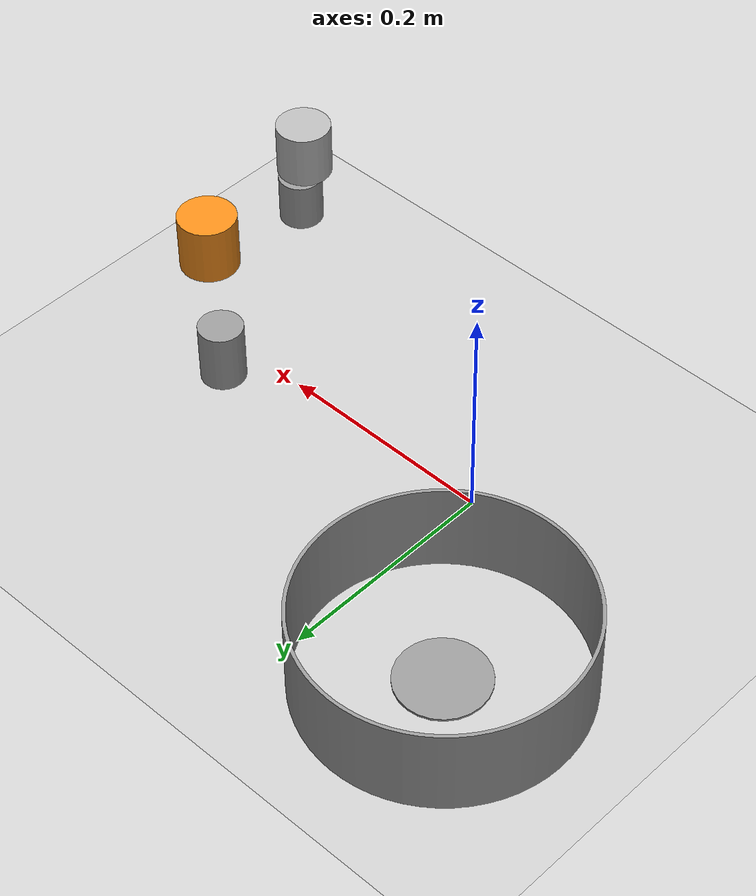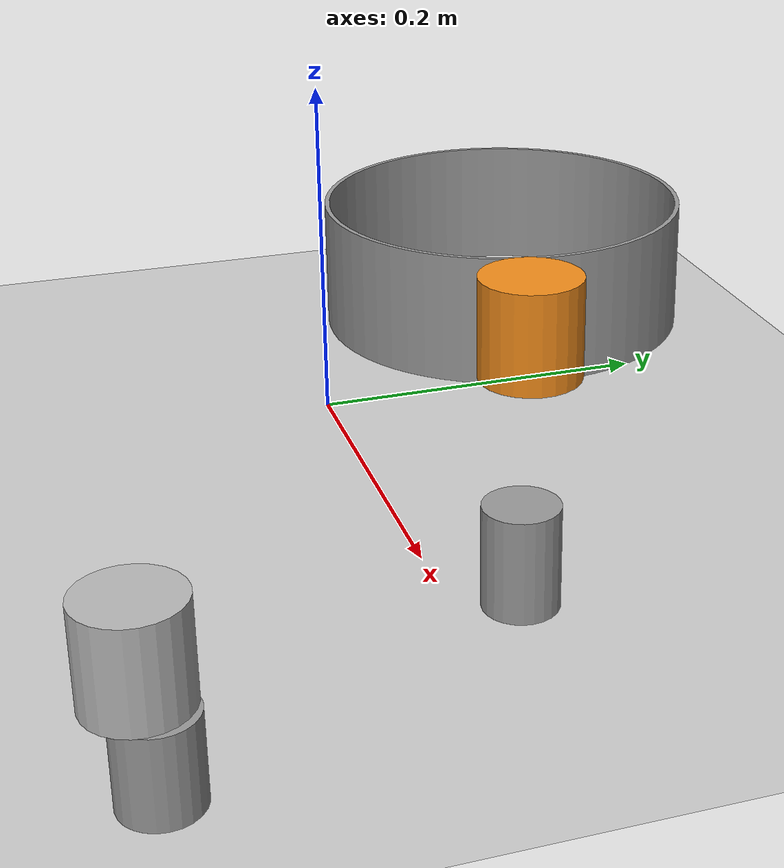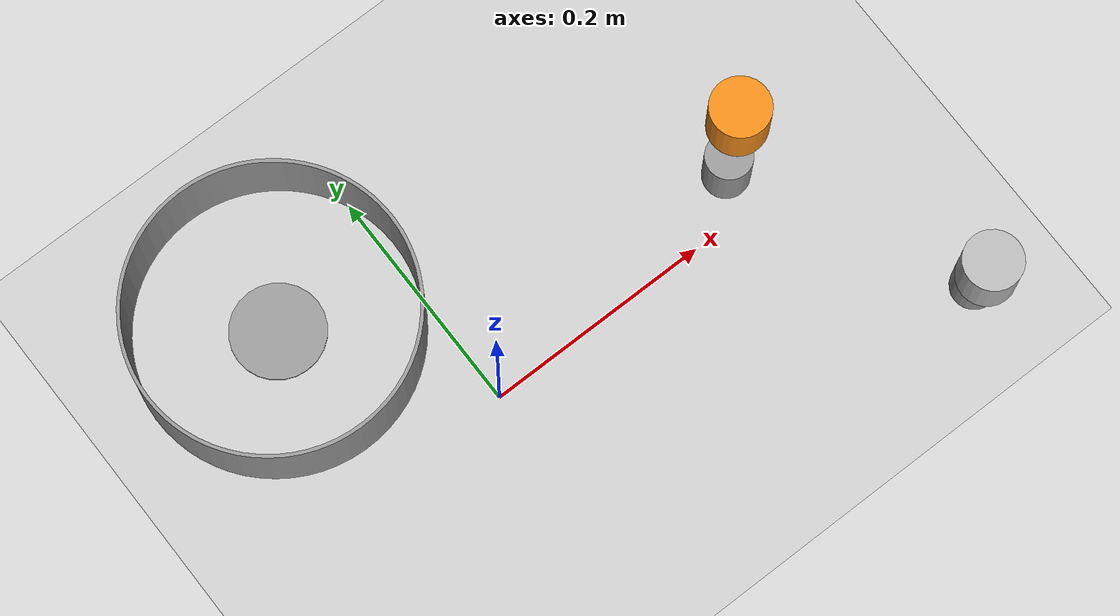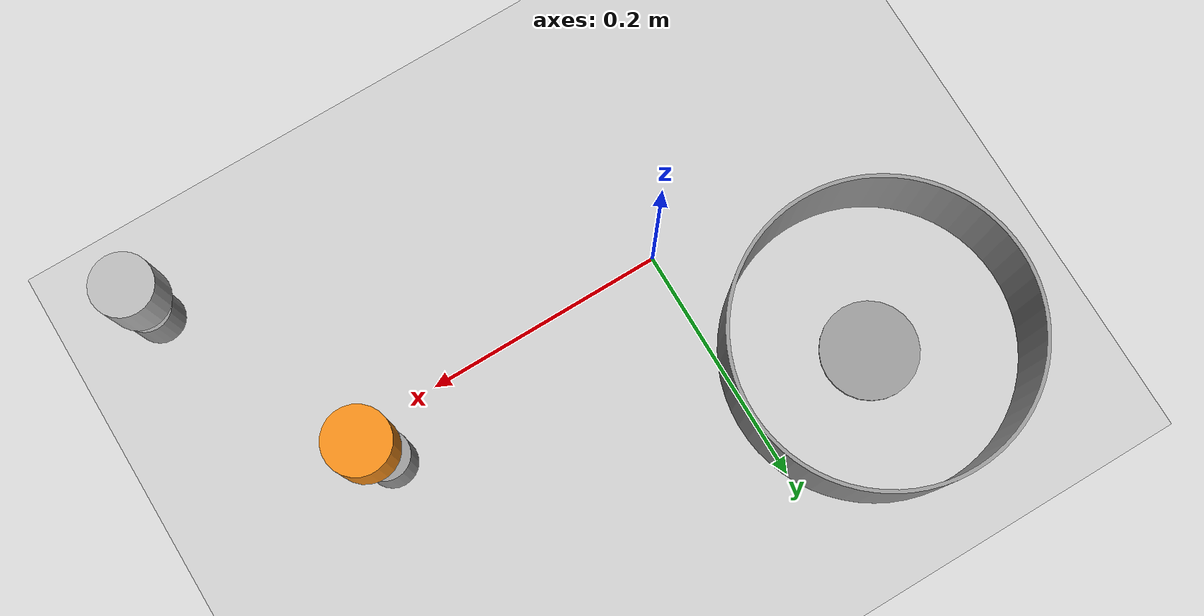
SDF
<sdf version="1.4">
  <world name="default">
    <!-- A global light source -->
    <include>
      <uri>model://sun</uri>
    </include>

    <!-- A ground plane -->

    <model name='ground_plane'>
      <static>1</static>
      <link name='link'>
	<pose frame=''>0 0 0 0 0 3.14</pose>
        <collision name='collision'>
          <geometry>
            <plane>
              <normal>0 0 1</normal>
              <size>2.2 2.2</size>
            </plane>
          </geometry>
          <surface>
            <contact>
              <collide_bitmask>65535</collide_bitmask>
              <ode/>
            </contact>
            <friction>
              <ode>
                <mu>1000</mu>
                <mu2>1000</mu2>
              </ode>
              <torsional>
                <ode/>
              </torsional>
            </friction>
            <bounce/>
          </surface>
          <max_contacts>10</max_contacts>
        </collision>
        <visual name='visual'>
          <cast_shadows>0</cast_shadows>
          <geometry>
            <plane>
              <normal>0 0 1</normal>
              <size>2.2 2.2</size>
            </plane>
          </geometry>
          <material>
            <script>
	      <uri>model://bottom_ruller/materials/scripts</uri>
              <uri>model://bottom_ruller/materials/textures</uri>
              <name>bottom_ruller</name>
            </script>
          </material>
        </visual>
        <self_collide>0</self_collide>
        <kinematic>0</kinematic>
      </link>
    </model>

    <physics type="ode">
      <real_time_update_rate>1000.0</real_time_update_rate>
      <max_step_size>0.001</max_step_size>
      <real_time_factor>1</real_time_factor>
      <ode>
        <solver>
          <type>quick</type>
          <iters>150</iters>
          <precon_iters>0</precon_iters>
          <sor>1.400000</sor>
          <use_dynamic_moi_rescaling>1</use_dynamic_moi_rescaling>
        </solver>
        <constraints>
          <cfm>0.00001</cfm>
          <erp>0.2</erp>
          <contact_max_correcting_vel>2000.000000</contact_max_correcting_vel>
          <contact_surface_layer>0.01000</contact_surface_layer>
        </constraints>
      </ode>
    </physics>

    <!-- Load world -->
    <include>
      <uri>model://jjapit</uri>
    </include>

    <scene>
      <ambient>0.4 0.4 0.4 1</ambient>
      <background>0.7 0.7 0.7 1</background>
      <shadows>true</shadows>
    </scene>

    <light name='user_directional_light_2' type='directional'>
      <pose frame=''>-1.68 0.07 0.81 0 -1.19 0</pose>
      <diffuse>0.5 0.5 0.5 1</diffuse>
      <specular>0.1 0.1 0.1 1</specular>
      <direction>0.1 0.1 -0.9</direction>
      <attenuation>
        <range>20</range>
        <constant>0.5</constant>
        <linear>0.01</linear>
        <quadratic>0.001</quadratic>
      </attenuation>
      <cast_shadows>1</cast_shadows>
    </light>

    <gui fullscreen='0'>
      <camera name='user_camera'>
        <pose> 2.0 -2.0 1.2 0.0 0.275643 2.356190 </pose>
        <view_controller>orbit</view_controller>
      </camera>
    </gui>

  </world>
</sdf>

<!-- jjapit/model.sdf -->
<sdf version='1.6'>
  <model name='jjapit'>
    <link name='link_1'>
      <pose frame=''>0.25729 0.03419 0.02 0 -0 0</pose>
      <inertial>
        <mass>1</mass>
        <inertia>
          <ixx>0.145833</ixx>
          <ixy>0</ixy>
          <ixz>0</ixz>
          <iyy>0.145833</iyy>
          <iyz>0</iyz>
          <izz>0.125</izz>
        </inertia>
      </inertial>
      <self_collide>0</self_collide>
      <kinematic>0</kinematic>
      <visual name='visual'>
        <pose frame=''>0 0 0 0 -0 0</pose>
        <geometry>
          <cylinder>
            <radius>0.02</radius>
            <length>0.07</length>
          </cylinder>
        </geometry>
        <material>
          <lighting>1</lighting>
          <script>
            <uri>file://media/materials/scripts/gazebo.material</uri>
            <name>Gazebo/Grey</name>
          </script>
          <shader type='pixel'/>
          <ambient>0.3 0.3 0.3 1</ambient>
          <diffuse>0.7 0.7 0.7 1</diffuse>
          <specular>0.01 0.01 0.01 1</specular>
          <emissive>0 0 0 1</emissive>
        </material>
        <transparency>0</transparency>
        <cast_shadows>1</cast_shadows>
      </visual>
      <collision name='collision'>
        <laser_retro>0</laser_retro>
        <max_contacts>10</max_contacts>
        <pose frame=''>0 0 0 0 -0 0</pose>
        <geometry>
          <cylinder>
            <radius>0.02</radius>
            <length>0.07</length>
          </cylinder>
        </geometry>
        <surface>
          <friction>
            <ode>
              <mu>1</mu>
              <mu2>1</mu2>
              <fdir1>0 0 0</fdir1>
              <slip1>0</slip1>
              <slip2>0</slip2>
            </ode>
            <torsional>
              <coefficient>1</coefficient>
              <patch_radius>0</patch_radius>
              <surface_radius>0</surface_radius>
              <use_patch_radius>1</use_patch_radius>
              <ode>
                <slip>0</slip>
              </ode>
            </torsional>
          </friction>
          <bounce>
            <restitution_coefficient>0</restitution_coefficient>
            <threshold>1e+06</threshold>
          </bounce>
          <contact>
            <collide_without_contact>0</collide_without_contact>
            <collide_without_contact_bitmask>1</collide_without_contact_bitmask>
            <collide_bitmask>1</collide_bitmask>
            <ode>
              <soft_cfm>0</soft_cfm>
              <soft_erp>0.2</soft_erp>
              <kp>1e+13</kp>
              <kd>1</kd>
              <max_vel>0.01</max_vel>
              <min_depth>0</min_depth>
            </ode>
            <bullet>
              <split_impulse>1</split_impulse>
              <split_impulse_penetration_threshold>-0.01</split_impulse_penetration_threshold>
              <soft_cfm>0</soft_cfm>
              <soft_erp>0.2</soft_erp>
              <kp>1e+13</kp>
              <kd>1</kd>
            </bullet>
          </contact>
        </surface>
      </collision>
    </link>
    <link name='link_1_clone'>
      <pose frame=''>0.357493 -0.16 0.02 0 -0 0</pose>
      <inertial>
        <mass>1</mass>
        <inertia>
          <ixx>0.145833</ixx>
          <ixy>0</ixy>
          <ixz>0</ixz>
          <iyy>0.145833</iyy>
          <iyz>0</iyz>
          <izz>0.125</izz>
        </inertia>
      </inertial>
      <self_collide>0</self_collide>
      <kinematic>0</kinematic>
      <visual name='visual'>
        <pose frame=''>0 0 0 0 -0 0</pose>
        <geometry>
          <cylinder>
            <radius>0.02</radius>
            <length>0.05</length>
          </cylinder>
        </geometry>
        <material>
          <lighting>1</lighting>
          <script>
            <uri>file://media/materials/scripts/gazebo.material</uri>
            <name>Gazebo/Grey</name>
          </script>
          <shader type='pixel'/>
          <ambient>0.3 0.3 0.3 1</ambient>
          <diffuse>0.7 0.7 0.7 1</diffuse>
          <specular>0.01 0.01 0.01 1</specular>
          <emissive>0 0 0 1</emissive>
        </material>
        <transparency>0</transparency>
        <cast_shadows>1</cast_shadows>
      </visual>
      <collision name='collision'>
        <laser_retro>0</laser_retro>
        <max_contacts>10</max_contacts>
        <pose frame=''>0 0 0 0 -0 0</pose>
        <geometry>
          <cylinder>
            <radius>0.02</radius>
            <length>0.05</length>
          </cylinder>
        </geometry>
        <surface>
          <friction>
            <ode>
              <mu>1</mu>
              <mu2>1</mu2>
              <fdir1>0 0 0</fdir1>
              <slip1>0</slip1>
              <slip2>0</slip2>
            </ode>
            <torsional>
              <coefficient>1</coefficient>
              <patch_radius>0</patch_radius>
              <surface_radius>0</surface_radius>
              <use_patch_radius>1</use_patch_radius>
              <ode>
                <slip>0</slip>
              </ode>
            </torsional>
          </friction>
          <bounce>
            <restitution_coefficient>0</restitution_coefficient>
            <threshold>1e+06</threshold>
          </bounce>
          <contact>
            <collide_without_contact>0</collide_without_contact>
            <collide_without_contact_bitmask>1</collide_without_contact_bitmask>
            <collide_bitmask>1</collide_bitmask>
            <ode>
              <soft_cfm>0</soft_cfm>
              <soft_erp>0.2</soft_erp>
              <kp>1e+13</kp>
              <kd>1</kd>
              <max_vel>0.01</max_vel>
              <min_depth>0</min_depth>
            </ode>
            <bullet>
              <split_impulse>1</split_impulse>
              <split_impulse_penetration_threshold>-0.01</split_impulse_penetration_threshold>
              <soft_cfm>0</soft_cfm>
              <soft_erp>0.2</soft_erp>
              <kp>1e+13</kp>
              <kd>1</kd>
            </bullet>
          </contact>
        </surface>
      </collision>
    </link>
    <model name='round_tin_base'>
      <link name='link'>
        <inertial>
          <pose frame=''>0 0 0.014085 0 -0 0</pose>
          <mass>0.0223</mass>
          <inertia>
            <ixx>1.93147e-05</ixx>
            <ixy>0</ixy>
            <ixz>0</ixz>
            <iyy>1.93147e-05</iyy>
            <iyz>0</iyz>
            <izz>3.568e-05</izz>
          </inertia>
        </inertial>
        <collision name='collision_cylinder'>
          <pose frame=''>0 0 0.001 0 -0 0</pose>
          <geometry>
            <cylinder>
              <radius>0.04</radius>
              <length>0.002</length>
            </cylinder>
          </geometry>
          <surface>
            <contact>
              <poissons_ratio>0.36</poissons_ratio>
              <elastic_modulus>5e+10</elastic_modulus>
              <ode>
                <kp>100000</kp>
                <kd>100</kd>
                <max_vel>100</max_vel>
                <min_depth>0.001</min_depth>
              </ode>
            </contact>
            <friction>
              <torsional>
                <coefficient>1</coefficient>
                <use_patch_radius>0</use_patch_radius>
                <surface_radius>0.01</surface_radius>
              </torsional>
            </friction>
          </surface>
        </collision>
        <visual name='visual_cylinder'>
          <pose frame=''>0 0 0.001 0 -0 0</pose>
          <geometry>
            <cylinder>
              <radius>0.04</radius>
              <length>0.002</length>
            </cylinder>
          </geometry>
          <material>
            <script>
              <uri>file://media/materials/scripts/gazebo.material</uri>
              <name>Gazebo/Grey</name>
            </script>
          </material>
        </visual>
        <collision name='collision_mesh'>
          <pose frame=''>0 0 0.001 0 -0 0</pose>
          <geometry>
            <mesh>
              <uri>model://round_tin_base/meshes/round_tin_base.dae</uri>
              <scale>3 3 3</scale>
            </mesh>
          </geometry>
          <surface>
            <contact>
              <ode>
                <max_vel>0.1</max_vel>
                <min_depth>0.0001</min_depth>
              </ode>
            </contact>
          </surface>
        </collision>
        <visual name='visual_mesh'>
          <pose frame=''>0 0 0.001 0 -0 0</pose>
          <geometry>
            <mesh>
              <uri>model://round_tin_base/meshes/round_tin_base.dae</uri>
              <scale>3 3 3</scale>
            </mesh>
          </geometry>
          <material>
            <script>
              <uri>file://media/materials/scripts/gazebo.material</uri>
              <name>Gazebo/Grey</name>
            </script>
          </material>
        </visual>
      </link>
      <pose frame=''>-0.107518 0.151406 0 0 -0 0</pose>
    </model>
    <model name='small_beer'>
      <link name='link'>
        <pose frame=''>0.2 0 0 0 -0 -0.1</pose>
        <inertial>
          <mass>0.001</mass>
          <inertia>
            <ixx>4.7583e-05</ixx>
            <ixy>0</ixy>
            <ixz>0</ixz>
            <iyy>4.7583e-05</iyy>
            <iyz>0</iyz>
            <izz>3.125e-06</izz>
          </inertia>
        </inertial>
        <collision name='collision'>
          <geometry>
            <cylinder>
              <radius>0.025</radius>
              <length>0.05</length>
            </cylinder>
          </geometry>
          <surface>
            <friction>
              <ode>
                <mu>1e+06</mu>
                <mu2>10000</mu2>
              </ode>
              <torsional>
                <ode/>
              </torsional>
            </friction>
            <contact>
              <ode>
                <kp>1e+06</kp>
                <kd>100</kd>
                <max_vel>1</max_vel>
                <min_depth>0.002</min_depth>
              </ode>
            </contact>
            <bounce/>
          </surface>
          <max_contacts>10</max_contacts>
        </collision>
        <visual name='visual'>
          <geometry>
            <cylinder>
              <radius>0.025</radius>
              <length>0.05</length>
            </cylinder>
          </geometry>
          <material>
            <script>
              <uri>model://apple1/materials/scripts</uri>
              <uri>model://apple1/materials/textures</uri>
              <name>apple1</name>
            </script>
          </material>
        </visual>
        <self_collide>0</self_collide>
        <kinematic>0</kinematic>
      </link>
      <pose frame=''>0.541089 -0.245561 0.075 0 -0 2.73305</pose>
    </model>
    <model name='small_beer_clone'>
      <link name='link'>
        <pose frame=''>0.2 0 0 0 -0 0.8</pose>
        <inertial>
          <mass>0.001</mass>
          <inertia>
            <ixx>4.7583e-05</ixx>
            <ixy>0</ixy>
            <ixz>0</ixz>
            <iyy>4.7583e-05</iyy>
            <iyz>0</iyz>
            <izz>3.125e-06</izz>
          </inertia>
        </inertial>
        <collision name='collision'>
          <geometry>
            <cylinder>
              <radius>0.025</radius>
              <length>0.05</length>
            </cylinder>
          </geometry>
          <surface>
            <friction>
              <ode>
                <mu>1e+06</mu>
                <mu2>10000</mu2>
              </ode>
              <torsional>
                <ode/>
              </torsional>
            </friction>
            <contact>
              <ode>
                <kp>1e+06</kp>
                <kd>100</kd>
                <max_vel>1</max_vel>
                <min_depth>0.002</min_depth>
              </ode>
            </contact>
            <bounce/>
          </surface>
          <max_contacts>10</max_contacts>
        </collision>
        <visual name='visual'>
          <geometry>
            <cylinder>
              <radius>0.025</radius>
              <length>0.05</length>
            </cylinder>
          </geometry>
          <material>
            <script>
              <uri>model://orange/materials/scripts</uri>
              <uri>model://orange/materials/textures</uri>
              <name>orange</name>
            </script>
          </material>
        </visual>
        <self_collide>0</self_collide>
        <kinematic>0</kinematic>
      </link>
      <pose frame=''>0.445653 -0.043647 0.15 0 -0 2.73305</pose>
    </model>
    <static>1</static>
    <allow_auto_disable>0</allow_auto_disable>
  </model>
</sdf>
